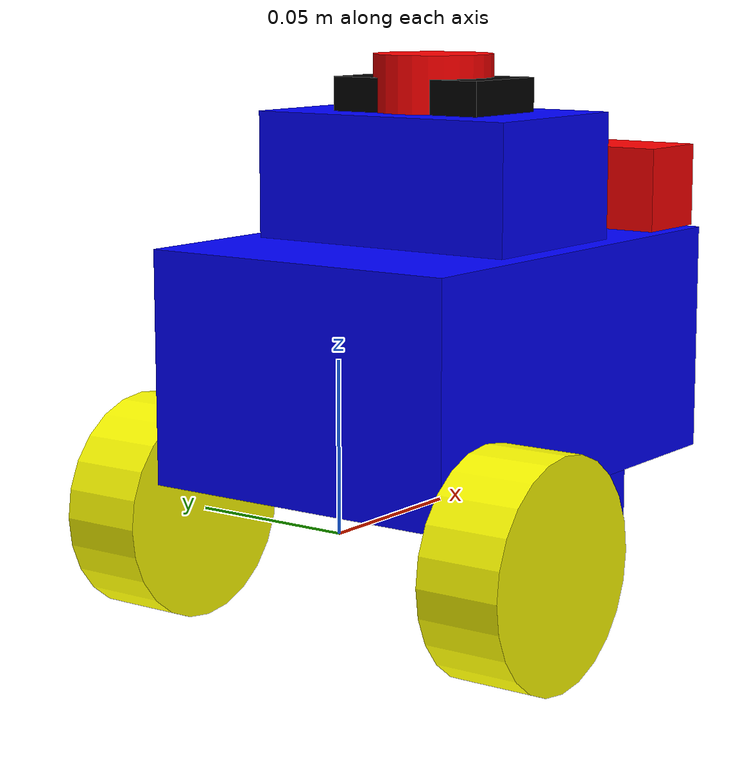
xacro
<?xml version="1.0"?>
<robot xmlns:xacro="http://www.ros.org/wiki/xacro"  name="robot">

    <xacro:include filename="robot_core.xacro"/>

    <xacro:include filename="ros2_control.xacro"/>

    <xacro:include filename="lidar.xacro"/>

    <xacro:include filename="depth_camera.xacro"/>

    <xacro:include filename="imu.xacro"/>

</robot>

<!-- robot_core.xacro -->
<robot xmlns:xacro="http://www.ros.org/wiki/xacro">

    <xacro:include filename="inertial_macros.xacro"/>

   <material name="grey">
        <color rgba="0.2 0.2 0.2 1"/>
    </material>

    <material name="white">
        <color rgba="1 1 1 1"/>
    </material>

    <material name="orange">
        <color rgba="1 0.3 0.1 1"/>
    </material>

    <material name="blue">
        <color rgba="0 0 1 1"/>
    </material>

    <material name="yellow">
        <color rgba="1 1 0 1"/>
    </material>

    <material name="black">
        <color rgba="0 0 0 1"/>
    </material>

    <material name="red">
        <color rgba="1 0 0 1"/>
    </material>

    <!-- BASE LINK -->

    <link name="base_link">

    </link>

    <!-- BASE FOOTPRINT LINK -->

    <joint name="base_footprint_joint" type="fixed">
        <parent link="base_link"/>
        <child link="base_footprint"/>
        <origin xyz="0 0 0" rpy="0 0 0"/>
    </joint>

    <link name="base_footprint">
    </link>

    <!-- CHASSIS LINK -->

    <joint name="chassis_joint" type="fixed">
        <parent link="base_link"/>
        <child link="chassis"/>
        <origin xyz="-0.02115 0 0.01125"/>
    </joint>

    <link name="chassis">
        <!-- Main chassis box -->
        <visual>
            <origin xyz="0.0695 0 0.03425"/>
            <geometry>
                <box size="0.139 0.099 0.0685"/>
            </geometry>
            <material name="blue"/>
        </visual>
        <collision>
            <origin xyz="0.0695 0 0.03425"/>
            <geometry>
                <box size="0.139 0.099 0.0685"/>
            </geometry>
        </collision>
        <!-- Raspberry pi box-->
        <visual>
            <origin xyz="0.067 0 0.0871"/>
            <geometry>
                <box size="0.056 0.085 0.0372"/>
            </geometry>
            <material name="blue"/>
        </visual>
        <collision>
            <origin xyz="0.067 0 0.0871"/>
            <geometry>
                <box size="0.056 0.085 0.0372"/>
            </geometry>
        </collision>
        <!-- Caster wheel box -->
        <visual>
            <origin xyz="0.1315 0 -0.02"/>
            <geometry>
                <box size="0.015 0.05 0.04"/>
            </geometry>
            <material name="blue"/>
        </visual>
        <collision>
            <origin xyz="0.1315 0 -0.02"/>
            <geometry>
                <box size="0.015 0.05 0.04"/>
            </geometry>
        </collision>
        <xacro:inertial_box mass="0.95968" x="0.139" y="0.099" z="0.0685">
            <origin xyz="0.0695 0 0.03425" rpy="0 0 0"/>
        </xacro:inertial_box>
    </link>

    <gazebo reference="chassis">
        <material>Gazebo/Blue</material>
    </gazebo>

    <!-- LEFT WHEEL LINK-->

    <joint name="left_wheel_joint" type="continuous">
        <parent link="base_link"/>
        <child link="left_wheel"/>
        <origin xyz="0 0.062 0" rpy="-${pi/2} 0 0"/>
        <axis xyz="0 0 1"/>
    </joint>

    <link name="left_wheel">
        <visual>
            <geometry>
                <cylinder radius="0.0325" length="0.025"/>
            </geometry>
            <material name="yellow"/>
        </visual>
        <collision>
            <geometry>
                <cylinder radius="0.0325" length="0.025"/>
            </geometry>
        </collision>
        <xacro:inertial_cylinder mass="0.0257" length="0.025" radius="0.0325">
            <origin xyz="0 0 0" rpy="0 0 0"/>
        </xacro:inertial_cylinder>
    </link>

    <gazebo reference="left_wheel">
        <material>Gazebo/Yellow</material>
    </gazebo>

    <!-- RIGHT WHEEL LINK-->

    <joint name="right_wheel_joint" type="continuous">
        <parent link="base_link"/>
        <child link="right_wheel"/>
        <origin xyz="0 -0.062 0" rpy="${pi/2} 0 0"/>
        <axis xyz="0 0 -1"/>
    </joint>

    <link name="right_wheel">
        <visual>
            <geometry>
                <cylinder radius="0.0325" length="0.025"/>
            </geometry>
            <material name="yellow"/>
        </visual>
        <collision>
            <geometry>
                <cylinder radius="0.0325" length="0.025"/>
            </geometry>
        </collision>
        <xacro:inertial_cylinder mass="0.0257" length="0.025" radius="0.0325">
            <origin xyz="0 0 0" rpy="0 0 0"/>
        </xacro:inertial_cylinder>
    </link>

    <gazebo reference="right_wheel">
        <material>Gazebo/Yellow</material>
    </gazebo>

    <!-- CASTER WHEEL LINK -->

    <joint name="caster_wheel_joint" type="fixed">
        <parent link="chassis"/>
        <child link="caster_wheel"/>
        <origin xyz="0.1315 0 -0.03625"/>
    </joint>

    <link name="caster_wheel">
        <visual>
            <geometry>
                <sphere radius="0.0075"/>
            </geometry>
            <material name="white"/>
        </visual>
        <collision>
            <geometry>
                <sphere radius="0.0075"/>
            </geometry>
        </collision>
        <xacro:inertial_sphere mass="0.01382" radius="0.0075">
            <origin xyz="0 0 0" rpy="0 0 0"/>
        </xacro:inertial_sphere>
    </link>

    <gazebo reference="caster_wheel">
        <material>Gazebo/White</material>
        <mu1 value="0.001"/>
        <mu2 value="0.001"/>
    </gazebo>

</robot>

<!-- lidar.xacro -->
<robot xmlns:xacro="http://www.ros.org/wiki/xacro">

    <joint name="laser_joint" type="fixed">
        <parent link="chassis"/>
        <child link="laser_frame"/>
        <origin xyz="0.067 0 0.1057" rpy="0 0 0"/>
    </joint>

    <link name="laser_frame">
        <visual>
            <geometry>
                <cylinder radius="0.01762" length="0.03335"/>
            </geometry>
            <material name="red"/>
        </visual>
        <collision>
            <geometry>
                <cylinder radius="0.0325" length="0.025"/>
            </geometry>
        </collision>
        <xacro:inertial_cylinder mass="0.045" length="0.03335" radius="0.01762">
            <origin xyz="0 0 0" rpy="0 0 0"/>
        </xacro:inertial_cylinder>
    </link>

    <gazebo reference="laser_frame">
        <material>Gazebo/Red</material>
        <sensor name="laser" type="ray">
            <pose>0 0 0 0 0 0</pose>
            <visualize>true</visualize>
            <update_rate>10</update_rate>
            <ray>
                <scan>
                    <horizontal>
                        <samples>360</samples>
                        <resolution>1</resolution>
                        <min_angle>-3.14</min_angle>
                        <max_angle>3.14</max_angle>
                    </horizontal>
                </scan>
                <range>
                    <min>0.3</min>
                    <max>12</max>
                    <resolution>0.01</resolution>
                </range>
            </ray>
            <plugin name="laser_controller" filename="libgazebo_ros_ray_sensor.so">
                <ros>
                    <argument>~/out:=scan</argument>
                </ros>
                <output_type>sensor_msgs/LaserScan</output_type>
                <frame_name>laser_frame</frame_name>
            </plugin>
        </sensor>
    </gazebo>

</robot>

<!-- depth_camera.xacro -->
<robot xmlns:xacro="http://www.ros.org/wiki/xacro">

    <!-- Mounting RealSense D435 to the chassis -->
    <joint name="camera_joint" type="fixed">
        <parent link="chassis"/>
        <child link="camera_link"/>
        <origin xyz="0.130 0 0.081" rpy="0 0 0"/>
    </joint>

    <!-- Base Link of RealSense D435 -->
    <link name="camera_link">
        <visual>
            <geometry>
                <box size="0.025 0.09 0.025"/>
            </geometry>
            <material name="red"/>
        </visual>
    </link>

    <!-- Depth Optical Frame -->
    <joint name="camera_depth_optical_joint" type="fixed">
        <parent link="camera_link"/>
        <child link="camera_depth_optical_frame"/>
        <origin xyz="0 0 0" rpy="${-pi/2} 0 ${-pi/2}"/>
    </joint>
    <link name="camera_depth_optical_frame"/>

    <!-- Color Optical Frame -->
    <joint name="camera_color_optical_joint" type="fixed">
        <parent link="camera_link"/>
        <child link="camera_color_frame"/>
        <origin xyz="0 0 0" rpy="0 0 0"/>
    </joint>
    <link name="camera_color_frame"/>

    <!-- Gazebo Simulation Settings -->
    <gazebo reference="camera_link">
        <material>Gazebo/Red</material>
        <sensor name="depth_camera" type="depth">
            <pose>0 0 0 0 0 0</pose>
            <visualize>true</visualize>
            <update_rate>10</update_rate>
            <camera>
                <horizontal_fov>1.089</horizontal_fov>
                <image>
                    <format>B8G8R8</format>
                    <width>640</width>
                    <height>480</height>
                </image>
                <clip>
                    <near>0.05</near>
                    <far>8.0</far>
                </clip>
            </camera>
            <plugin name="camera_controller" filename="libgazebo_ros_camera.so">
                <frame_name>camera_depth_optical_frame</frame_name>
                <min_depth>0.1</min_depth>
                <max_depth>100.0</max_depth>
            </plugin>
        </sensor>
    </gazebo>

</robot>

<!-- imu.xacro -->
<robot xmlns:xacro="http://www.ros.org/wiki/xacro">

  <joint name="imu_joint" type="fixed">
    <parent link="chassis"/>
    <child link="imu_link"/>
    <origin xyz="0.067 0 0.1057" rpy="0 0 -${pi/2}"/>
  </joint>

  <!-- IMU Sensor Definition -->
  <link name="imu_link">
    <inertial>
      <mass value="0.05"/>
      <origin xyz="0 0 0"/>
      <inertia ixx="0.0001" ixy="0" ixz="0" iyy="0.0001" iyz="0" izz="0.0001"/>
    </inertial>
    <visual>
      <geometry>
        <box size="0.05 0.03 0.02"/>
      </geometry>
      <origin xyz="0 0 0"/>
      <material name="black"/>
    </visual>
    <collision>
      <geometry>
        <box size="0.05 0.03 0.02"/>
      </geometry>
      <origin xyz="0 0 0"/>
    </collision>
  </link>

</robot>
